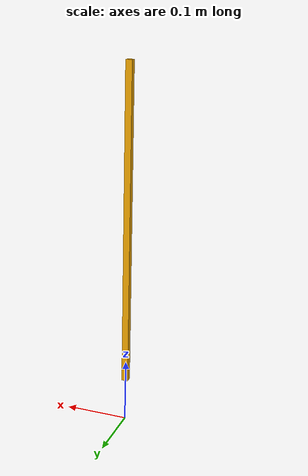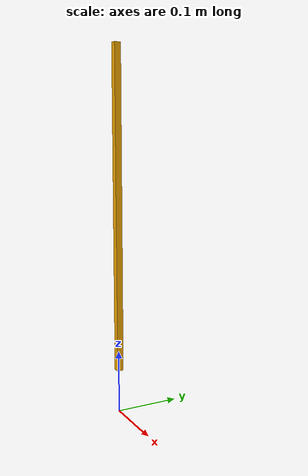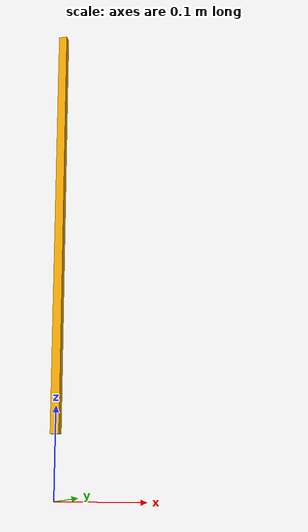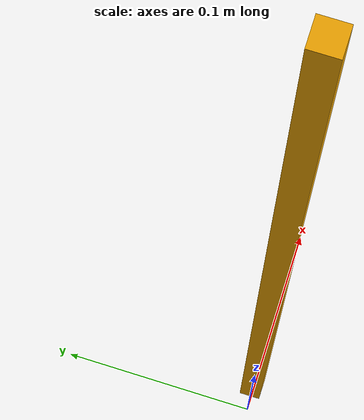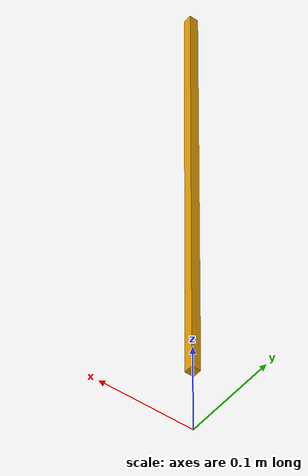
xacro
<?xml version="1.0"?>

<robot name="box_robot" xmlns:xacro="http://ros.org/wiki/xacro">

  <xacro:macro name="box_robot">
    <link name="base_link">
        <visual name="base_visual">
            <origin xyz="0 0 0.32" rpy="0 0 0"/>
            <geometry>
              <box size="0.01 0.01 0.5"/>
            </geometry>
        </visual>
        <collision>
            <origin xyz="0 0 0.32" rpy="0 0 0"/>
            <geometry>
              <box size="0.01 0.01 0.5"/>
            </geometry>
        </collision>
    </link>
    <gazebo reference="base_link">
        <material value="Gazebo/Red"/>
    </gazebo>
  </xacro:macro>

  <xacro:box_robot/>
</robot>
